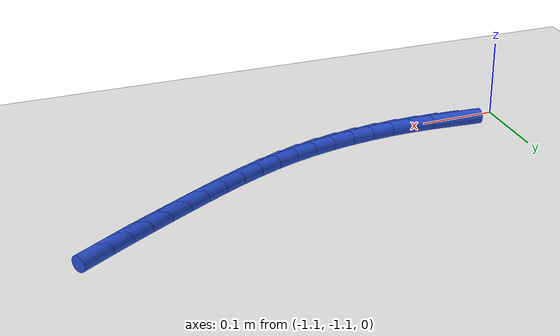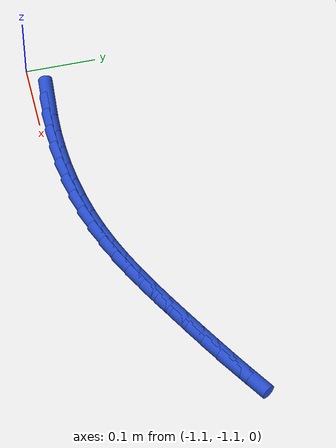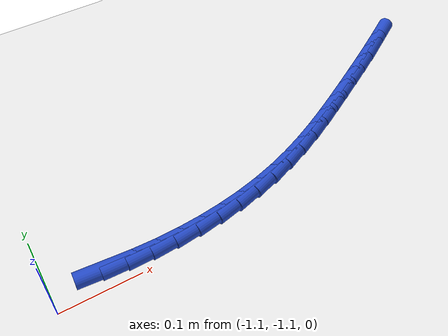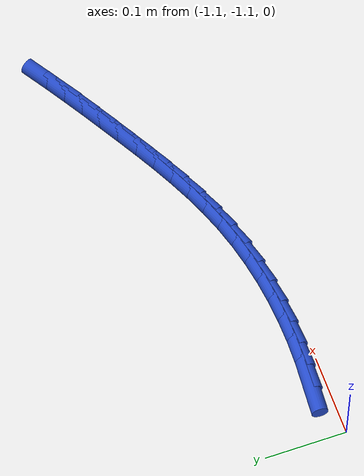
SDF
<sdf version="1.6">
 <world name="default">
  <model name="ground_plane">
   <static>1</static>
   <link name="link">
    <collision name="collision">
     <geometry><plane><normal>0 0 1</normal><size>100 100</size></plane></geometry>
     <surface><friction><ode><mu>100</mu><mu2>50</mu2></ode></friction></surface>
    </collision>
    <visual name="visual">
     <cast_shadows>0</cast_shadows>
     <geometry><plane><normal>0 0 1</normal><size>100 100</size></plane></geometry>
     <material>
      <script><uri>file://media/materials/scripts/gazebo.material</uri><name>Gazebo/WhiteGlow</name></script>
     </material>
    </visual>
   </link>
  </model>
  <model name="line">
   <link name="link_173">
    <pose>-1.030973122491755 -1.080873657794466 0.01 0 1.57 -0.07299750744861633</pose>
    <collision name="collision">
     <geometry><cylinder><radius>0.01</radius><length>0.08</length></cylinder></geometry>
    </collision>
    <visual name="visual">
     <material>
      <script><name>Gazebo/Blue</name><uri>file://media/materials/scripts/gazebo.material</uri></script>
     </material>
     <geometry><cylinder><radius>0.01</radius><length>0.08</length></cylinder></geometry>
    </visual>
   </link>
   <link name="link_174">
    <pose>-1.0016868825822451 -1.0830152856475845 0.01 0 1.57 -0.02582949899266592</pose>
    <collision name="collision">
     <geometry><cylinder><radius>0.01</radius><length>0.08</length></cylinder></geometry>
    </collision>
    <visual name="visual">
     <material>
      <script><name>Gazebo/Blue</name><uri>file://media/materials/scripts/gazebo.material</uri></script>
     </material>
     <geometry><cylinder><radius>0.01</radius><length>0.08</length></cylinder></geometry>
    </visual>
   </link>
   <link name="link_175">
    <pose>-0.9723280245132367 -1.0837737789295625 0.01 0 1.57 0.022270588403138565</pose>
    <collision name="collision">
     <geometry><cylinder><radius>0.01</radius><length>0.08</length></cylinder></geometry>
    </collision>
    <visual name="visual">
     <material>
      <script><name>Gazebo/Blue</name><uri>file://media/materials/scripts/gazebo.material</uri></script>
     </material>
     <geometry><cylinder><radius>0.01</radius><length>0.08</length></cylinder></geometry>
    </visual>
   </link>
   <link name="link_176">
    <pose>-0.942999632518695 -1.0831205103768369 0.01 0 1.57 0.0715907153973304</pose>
    <collision name="collision">
     <geometry><cylinder><radius>0.01</radius><length>0.08</length></cylinder></geometry>
    </collision>
    <visual name="visual">
     <material>
      <script><name>Gazebo/Blue</name><uri>file://media/materials/scripts/gazebo.material</uri></script>
     </material>
     <geometry><cylinder><radius>0.01</radius><length>0.08</length></cylinder></geometry>
    </visual>
   </link>
   <link name="link_177">
    <pose>-0.9138047908325816 -1.081026852725844 0.01 0 1.57 0.12241299009262625</pose>
    <collision name="collision">
     <geometry><cylinder><radius>0.01</radius><length>0.08</length></cylinder></geometry>
    </collision>
    <visual name="visual">
     <material>
      <script><name>Gazebo/Blue</name><uri>file://media/materials/scripts/gazebo.material</uri></script>
     </material>
     <geometry><cylinder><radius>0.01</radius><length>0.08</length></cylinder></geometry>
    </visual>
   </link>
   <link name="link_178">
    <pose>-0.8848465836888596 -1.0774641787130201 0.01 0 1.57 0.17501092005323862</pose>
    <collision name="collision">
     <geometry><cylinder><radius>0.01</radius><length>0.08</length></cylinder></geometry>
    </collision>
    <visual name="visual">
     <material>
      <script><name>Gazebo/Blue</name><uri>file://media/materials/scripts/gazebo.material</uri></script>
     </material>
     <geometry><cylinder><radius>0.01</radius><length>0.08</length></cylinder></geometry>
    </visual>
   </link>
   <link name="link_179">
    <pose>-0.8562280953214914 -1.0724038610748023 0.01 0 1.57 0.22964461884877715</pose>
    <collision name="collision">
     <geometry><cylinder><radius>0.01</radius><length>0.08</length></cylinder></geometry>
    </collision>
    <visual name="visual">
     <material>
      <script><name>Gazebo/Blue</name><uri>file://media/materials/scripts/gazebo.material</uri></script>
     </material>
     <geometry><cylinder><radius>0.01</radius><length>0.08</length></cylinder></geometry>
    </visual>
   </link>
   <link name="link_180">
    <pose>-0.8280524099644416 -1.0658172725476271 0.01 0 1.57 0.2865535497488063</pose>
    <collision name="collision">
     <geometry><cylinder><radius>0.01</radius><length>0.08</length></cylinder></geometry>
    </collision>
    <visual name="visual">
     <material>
      <script><name>Gazebo/Blue</name><uri>file://media/materials/scripts/gazebo.material</uri></script>
     </material>
     <geometry><cylinder><radius>0.01</radius><length>0.08</length></cylinder></geometry>
    </visual>
   </link>
   <link name="link_181">
    <pose>-0.8004226118516722 -1.0576757858679313 0.01 0 1.57 0.3445610986268191</pose>
    <collision name="collision">
     <geometry><cylinder><radius>0.01</radius><length>0.08</length></cylinder></geometry>
    </collision>
    <visual name="visual">
     <material>
      <script><name>Gazebo/Blue</name><uri>file://media/materials/scripts/gazebo.material</uri></script>
     </material>
     <geometry><cylinder><radius>0.01</radius><length>0.08</length></cylinder></geometry>
    </visual>
   </link>
   <link name="link_182">
    <pose>-0.7734173762026503 -1.0479842269727784 0.01 0 1.57 0.3962923992719378</pose>
    <collision name="collision">
     <geometry><cylinder><radius>0.01</radius><length>0.08</length></cylinder></geometry>
    </collision>
    <visual name="visual">
     <material>
      <script><name>Gazebo/Blue</name><uri>file://media/materials/scripts/gazebo.material</uri></script>
     </material>
     <geometry><cylinder><radius>0.01</radius><length>0.08</length></cylinder></geometry>
    </visual>
   </link>
   <link name="link_183">
    <pose>-0.7469861026605874 -1.036924597399227 0.01 0 1.57 0.43906121346852856</pose>
    <collision name="collision">
     <geometry><cylinder><radius>0.01</radius><length>0.08</length></cylinder></geometry>
    </collision>
    <visual name="visual">
     <material>
      <script><name>Gazebo/Blue</name><uri>file://media/materials/scripts/gazebo.material</uri></script>
     </material>
     <geometry><cylinder><radius>0.01</radius><length>0.08</length></cylinder></geometry>
    </visual>
   </link>
   <link name="link_184">
    <pose>-0.7210355544765008 -1.0247373329886893 0.01 0 1.57 0.4727713897098822</pose>
    <collision name="collision">
     <geometry><cylinder><radius>0.01</radius><length>0.08</length></cylinder></geometry>
    </collision>
    <visual name="visual">
     <material>
      <script><name>Gazebo/Blue</name><uri>file://media/materials/scripts/gazebo.material</uri></script>
     </material>
     <geometry><cylinder><radius>0.01</radius><length>0.08</length></cylinder></geometry>
    </visual>
   </link>
   <link name="link_185">
    <pose>-0.6954724684930826 -1.0116629057758917 0.01 0 1.57 0.49745648462239644</pose>
    <collision name="collision">
     <geometry><cylinder><radius>0.01</radius><length>0.08</length></cylinder></geometry>
    </collision>
    <visual name="visual">
     <material>
      <script><name>Gazebo/Blue</name><uri>file://media/materials/scripts/gazebo.material</uri></script>
     </material>
     <geometry><cylinder><radius>0.01</radius><length>0.08</length></cylinder></geometry>
    </visual>
   </link>
   <link name="link_186">
    <pose>-0.6702035815530222 -0.9979417877955585 0.01 0 1.57 0.5131955963010959</pose>
    <collision name="collision">
     <geometry><cylinder><radius>0.01</radius><length>0.08</length></cylinder></geometry>
    </collision>
    <visual name="visual">
     <material>
      <script><name>Gazebo/Blue</name><uri>file://media/materials/scripts/gazebo.material</uri></script>
     </material>
     <geometry><cylinder><radius>0.01</radius><length>0.08</length></cylinder></geometry>
    </visual>
   </link>
   <link name="link_187">
    <pose>-0.6451356304990103 -0.9838144510824156 0.01 0 1.57 0.5206727222819227</pose>
    <collision name="collision">
     <geometry><cylinder><radius>0.01</radius><length>0.08</length></cylinder></geometry>
    </collision>
    <visual name="visual">
     <material>
      <script><name>Gazebo/Blue</name><uri>file://media/materials/scripts/gazebo.material</uri></script>
     </material>
     <geometry><cylinder><radius>0.01</radius><length>0.08</length></cylinder></geometry>
    </visual>
   </link>
   <link name="link_188">
    <pose>-0.6201826457659606 -0.9695050264071302 0.01 0 1.57 0.5267664742781719</pose>
    <collision name="collision">
     <geometry><cylinder><radius>0.01</radius><length>0.08</length></cylinder></geometry>
    </collision>
    <visual name="visual">
     <material>
      <script><name>Gazebo/Blue</name><uri>file://media/materials/scripts/gazebo.material</uri></script>
     </material>
     <geometry><cylinder><radius>0.01</radius><length>0.08</length></cylinder></geometry>
    </visual>
   </link>
   <link name="link_189">
    <pose>-0.5953394321241001 -0.9550566699668095 0.01 0 1.57 0.5357524570188713</pose>
    <collision name="collision">
     <geometry><cylinder><radius>0.01</radius><length>0.08</length></cylinder></geometry>
    </collision>
    <visual name="visual">
     <material>
      <script><name>Gazebo/Blue</name><uri>file://media/materials/scripts/gazebo.material</uri></script>
     </material>
     <geometry><cylinder><radius>0.01</radius><length>0.08</length></cylinder></geometry>
    </visual>
   </link>
   <link name="link_190">
    <pose>-0.5706510621859966 -0.9403999130598648 0.01 0 1.57 0.5477052508308654</pose>
    <collision name="collision">
     <geometry><cylinder><radius>0.01</radius><length>0.08</length></cylinder></geometry>
    </collision>
    <visual name="visual">
     <material>
      <script><name>Gazebo/Blue</name><uri>file://media/materials/scripts/gazebo.material</uri></script>
     </material>
     <geometry><cylinder><radius>0.01</radius><length>0.08</length></cylinder></geometry>
    </visual>
   </link>
   <link name="link_191">
    <pose>-0.546163367253601 -0.925463587144194 0.01 0 1.57 0.5626329713056502</pose>
    <collision name="collision">
     <geometry><cylinder><radius>0.01</radius><length>0.08</length></cylinder></geometry>
    </collision>
    <visual name="visual">
     <material>
      <script><name>Gazebo/Blue</name><uri>file://media/materials/scripts/gazebo.material</uri></script>
     </material>
     <geometry><cylinder><radius>0.01</radius><length>0.08</length></cylinder></geometry>
    </visual>
   </link>
  </model>
 </world>
</sdf>
